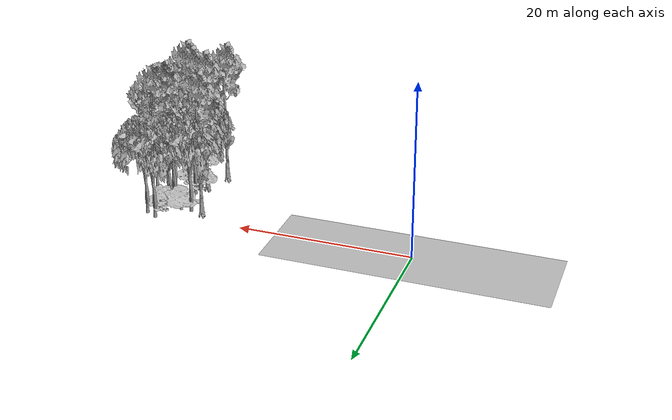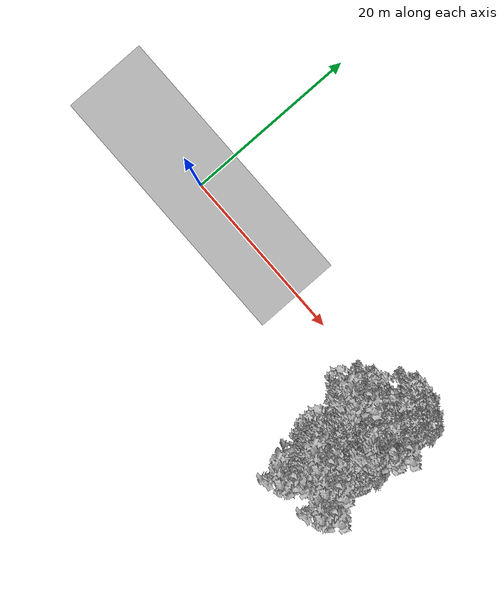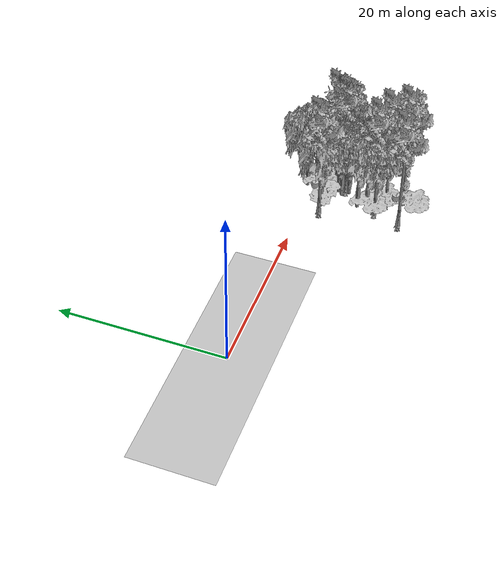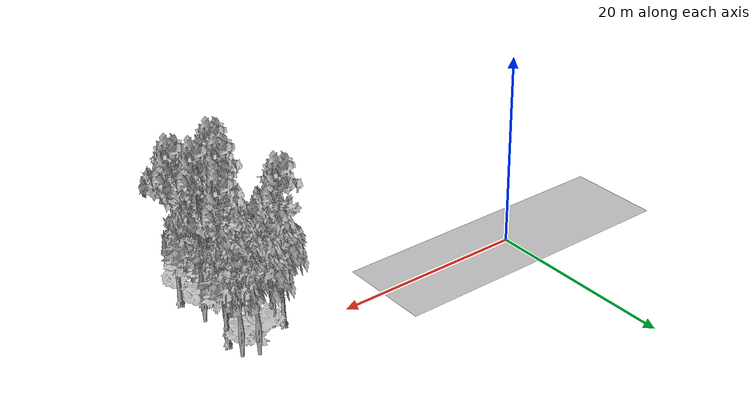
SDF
<sdf version="1.7">
 <world name="default">
  <model name="ground_plane">
   <static>1</static>
   <link name="link">
    <collision name="collision">
     <pose>-50 0 0 0 -0 0</pose>
     <geometry><plane><normal>0 0 1</normal><size>100 100</size></plane></geometry>
     <surface><contact><ode><min_depth>0.01</min_depth><max_vel>0</max_vel></ode></contact></surface>
    </collision>
    <visual name="grass">
     <cast_shadows>0</cast_shadows>
     <geometry>
      <mesh>
       <scale>0.5814285714285714 0.18142857142857144 0.1</scale>
       <uri>file://grass_plane/meshes/grass_plane.dae</uri>
      </mesh>
     </geometry>
    </visual>
   </link>
  </model>
  <model name="Tree 71">
   <static>1</static>
   <pose>29.939043311026538 -1.2379246793269818 0 1.57079 -0 0</pose>
   <link name="link">
    <collision name="collision">
     <geometry><mesh><scale>4 2.5 4</scale><uri>model://tree_1/meshes/tree_1.obj</uri></mesh></geometry>
    </collision>
    <visual name="visual">
     <geometry><mesh><scale>4 2.5 4</scale><uri>model://tree_1/meshes/tree_1.obj</uri></mesh></geometry>
    </visual>
   </link>
  </model>
  <model name="Tree 77">
   <static>1</static>
   <pose>28.700878751398093 -8.224944167050186 0 1.57079 -0 0</pose>
   <link name="link">
    <collision name="collision">
     <geometry><mesh><scale>3.5 5 3.5</scale><uri>model://tree_2/meshes/tree_2.obj</uri></mesh></geometry>
    </collision>
    <visual name="visual">
     <geometry><mesh><scale>3.5 5 3.5</scale><uri>model://tree_2/meshes/tree_2.obj</uri></mesh></geometry>
    </visual>
   </link>
  </model>
  <model name="Tree 133">
   <static>1</static>
   <pose>29.845886548754166 -9.194254597273273 0 1.57079 -0 0</pose>
   <link name="link">
    <collision name="collision">
     <geometry><mesh><scale>3.5 5 3.5</scale><uri>model://tree_9/meshes/tree_9.obj</uri></mesh></geometry>
    </collision>
    <visual name="visual">
     <geometry><mesh><scale>3.5 5 3.5</scale><uri>model://tree_9/meshes/tree_9.obj</uri></mesh></geometry>
    </visual>
   </link>
  </model>
  <model name="Tree 137">
   <static>1</static>
   <pose>30.569306665416434 -3.615237241262916 0 1.57079 -0 0</pose>
   <link name="link">
    <collision name="collision">
     <geometry><mesh><scale>3.5 5 3.5</scale><uri>model://tree_9/meshes/tree_9.obj</uri></mesh></geometry>
    </collision>
    <visual name="visual">
     <geometry><mesh><scale>3.5 5 3.5</scale><uri>model://tree_9/meshes/tree_9.obj</uri></mesh></geometry>
    </visual>
   </link>
  </model>
  <model name="Tree 175">
   <static>1</static>
   <pose>28.199312727580235 -6.062269736530633 0 1.57079 -0 0</pose>
   <link name="link">
    <collision name="collision">
     <geometry><mesh><scale>3.5 5 3.5</scale><uri>model://tree_2/meshes/tree_2.obj</uri></mesh></geometry>
    </collision>
    <visual name="visual">
     <geometry><mesh><scale>3.5 5 3.5</scale><uri>model://tree_2/meshes/tree_2.obj</uri></mesh></geometry>
    </visual>
   </link>
  </model>
  <model name="Tree 213">
   <static>1</static>
   <pose>31.31857762931945 -2.4606115797913795 0 1.57079 -0 0</pose>
   <link name="link">
    <collision name="collision">
     <geometry><mesh><scale>3.5 5 3.5</scale><uri>model://tree_9/meshes/tree_9.obj</uri></mesh></geometry>
    </collision>
    <visual name="visual">
     <geometry><mesh><scale>3.5 5 3.5</scale><uri>model://tree_9/meshes/tree_9.obj</uri></mesh></geometry>
    </visual>
   </link>
  </model>
  <model name="Tree 224">
   <static>1</static>
   <pose>31.099440274319377 -6.606701045077925 0 1.57079 -0 0</pose>
   <link name="link">
    <collision name="collision">
     <geometry><mesh><scale>3.5 5 3.5</scale><uri>model://tree_2/meshes/tree_2.obj</uri></mesh></geometry>
    </collision>
    <visual name="visual">
     <geometry><mesh><scale>3.5 5 3.5</scale><uri>model://tree_2/meshes/tree_2.obj</uri></mesh></geometry>
    </visual>
   </link>
  </model>
  <model name="Tree 255">
   <static>1</static>
   <pose>30.53121874693464 -3.8975080141703717 0 1.57079 -0 0</pose>
   <link name="link">
    <collision name="collision">
     <geometry><mesh><scale>3.5 5 3.5</scale><uri>model://tree_9/meshes/tree_9.obj</uri></mesh></geometry>
    </collision>
    <visual name="visual">
     <geometry><mesh><scale>3.5 5 3.5</scale><uri>model://tree_9/meshes/tree_9.obj</uri></mesh></geometry>
    </visual>
   </link>
  </model>
  <model name="Tree 261">
   <static>1</static>
   <pose>26.740040383749218 -1.8676163280130424 0 1.57079 -0 0</pose>
   <link name="link">
    <collision name="collision">
     <geometry><mesh><scale>3.5 5 3.5</scale><uri>model://tree_2/meshes/tree_2.obj</uri></mesh></geometry>
    </collision>
    <visual name="visual">
     <geometry><mesh><scale>3.5 5 3.5</scale><uri>model://tree_2/meshes/tree_2.obj</uri></mesh></geometry>
    </visual>
   </link>
  </model>
  <model name="Tree 302">
   <static>1</static>
   <pose>29.974271773968255 0.8202007497809056 0 1.57079 -0 0</pose>
   <link name="link">
    <collision name="collision">
     <geometry><mesh><scale>3.5 5 3.5</scale><uri>model://tree_2/meshes/tree_2.obj</uri></mesh></geometry>
    </collision>
    <visual name="visual">
     <geometry><mesh><scale>3.5 5 3.5</scale><uri>model://tree_2/meshes/tree_2.obj</uri></mesh></geometry>
    </visual>
   </link>
  </model>
  <model name="Tree 310">
   <static>1</static>
   <pose>29.826538153047423 -8.60617542661119 0 1.57079 -0 0</pose>
   <link name="link">
    <collision name="collision">
     <geometry><mesh><scale>4 2.5 4</scale><uri>model://tree_1/meshes/tree_1.obj</uri></mesh></geometry>
    </collision>
    <visual name="visual">
     <geometry><mesh><scale>4 2.5 4</scale><uri>model://tree_1/meshes/tree_1.obj</uri></mesh></geometry>
    </visual>
   </link>
  </model>
  <model name="Tree 323">
   <static>1</static>
   <pose>31.31312142952916 0.0999133917924464 0 1.57079 -0 0</pose>
   <link name="link">
    <collision name="collision">
     <geometry><mesh><scale>3.5 5 3.5</scale><uri>model://tree_2/meshes/tree_2.obj</uri></mesh></geometry>
    </collision>
    <visual name="visual">
     <geometry><mesh><scale>3.5 5 3.5</scale><uri>model://tree_2/meshes/tree_2.obj</uri></mesh></geometry>
    </visual>
   </link>
  </model>
  <model name="Tree 334">
   <static>1</static>
   <pose>28.21231699270382 -2.009828105523452 0 1.57079 -0 0</pose>
   <link name="link">
    <collision name="collision">
     <geometry><mesh><scale>3 2 3</scale><uri>model://tree_3/meshes/tree_3.obj</uri></mesh></geometry>
    </collision>
    <visual name="visual">
     <geometry><mesh><scale>3 2 3</scale><uri>model://tree_3/meshes/tree_3.obj</uri></mesh></geometry>
    </visual>
   </link>
  </model>
  <model name="Tree 355">
   <static>1</static>
   <pose>25.609942294058413 -2.033720353215257 0 1.57079 -0 0</pose>
   <link name="link">
    <collision name="collision">
     <geometry><mesh><scale>3.5 5 3.5</scale><uri>model://tree_9/meshes/tree_9.obj</uri></mesh></geometry>
    </collision>
    <visual name="visual">
     <geometry><mesh><scale>3.5 5 3.5</scale><uri>model://tree_9/meshes/tree_9.obj</uri></mesh></geometry>
    </visual>
   </link>
  </model>
  <model name="Tree 375">
   <static>1</static>
   <pose>29.678314139586234 -3.6252772695760633 0 1.57079 -0 0</pose>
   <link name="link">
    <collision name="collision">
     <geometry><mesh><scale>3.5 5 3.5</scale><uri>model://tree_2/meshes/tree_2.obj</uri></mesh></geometry>
    </collision>
    <visual name="visual">
     <geometry><mesh><scale>3.5 5 3.5</scale><uri>model://tree_2/meshes/tree_2.obj</uri></mesh></geometry>
    </visual>
   </link>
  </model>
  <model name="Tree 386">
   <static>1</static>
   <pose>29.981588241072956 -12.316803778353288 0 1.57079 -0 0</pose>
   <link name="link">
    <collision name="collision">
     <geometry><mesh><scale>4 2.5 4</scale><uri>model://tree_1/meshes/tree_1.obj</uri></mesh></geometry>
    </collision>
    <visual name="visual">
     <geometry><mesh><scale>4 2.5 4</scale><uri>model://tree_1/meshes/tree_1.obj</uri></mesh></geometry>
    </visual>
   </link>
  </model>
  <model name="Tree 406">
   <static>1</static>
   <pose>26.64730503322535 -11.579839869152341 0 1.57079 -0 0</pose>
   <link name="link">
    <collision name="collision">
     <geometry><mesh><scale>3.5 5 3.5</scale><uri>model://tree_9/meshes/tree_9.obj</uri></mesh></geometry>
    </collision>
    <visual name="visual">
     <geometry><mesh><scale>3.5 5 3.5</scale><uri>model://tree_9/meshes/tree_9.obj</uri></mesh></geometry>
    </visual>
   </link>
  </model>
  <model name="Tree 417">
   <static>1</static>
   <pose>28.11347539165081 -7.652668793679117 0 1.57079 -0 0</pose>
   <link name="link">
    <collision name="collision">
     <geometry><mesh><scale>4 2.5 4</scale><uri>model://tree_1/meshes/tree_1.obj</uri></mesh></geometry>
    </collision>
    <visual name="visual">
     <geometry><mesh><scale>4 2.5 4</scale><uri>model://tree_1/meshes/tree_1.obj</uri></mesh></geometry>
    </visual>
   </link>
  </model>
  <model name="Tree 441">
   <static>1</static>
   <pose>27.81447646521923 -8.319721543521398 0 1.57079 -0 0</pose>
   <link name="link">
    <collision name="collision">
     <geometry><mesh><scale>3.5 5 3.5</scale><uri>model://tree_9/meshes/tree_9.obj</uri></mesh></geometry>
    </collision>
    <visual name="visual">
     <geometry><mesh><scale>3.5 5 3.5</scale><uri>model://tree_9/meshes/tree_9.obj</uri></mesh></geometry>
    </visual>
   </link>
  </model>
  <model name="Tree 487">
   <static>1</static>
   <pose>30.072263222346606 -3.1501477004344185 0 1.57079 -0 0</pose>
   <link name="link">
    <collision name="collision">
     <geometry><mesh><scale>3.5 5 3.5</scale><uri>model://tree_2/meshes/tree_2.obj</uri></mesh></geometry>
    </collision>
    <visual name="visual">
     <geometry><mesh><scale>3.5 5 3.5</scale><uri>model://tree_2/meshes/tree_2.obj</uri></mesh></geometry>
    </visual>
   </link>
  </model>
  <model name="Tree 497">
   <static>1</static>
   <pose>30.183430731869677 -4.4324883854423796 0 1.57079 -0 0</pose>
   <link name="link">
    <collision name="collision">
     <geometry><mesh><scale>3.5 5 3.5</scale><uri>model://tree_2/meshes/tree_2.obj</uri></mesh></geometry>
    </collision>
    <visual name="visual">
     <geometry><mesh><scale>3.5 5 3.5</scale><uri>model://tree_2/meshes/tree_2.obj</uri></mesh></geometry>
    </visual>
   </link>
  </model>
  <model name="Tree 524">
   <static>1</static>
   <pose>28.239639428664375 -7.191563224096059 0 1.57079 -0 0</pose>
   <link name="link">
    <collision name="collision">
     <geometry><mesh><scale>3.5 5 3.5</scale><uri>model://tree_2/meshes/tree_2.obj</uri></mesh></geometry>
    </collision>
    <visual name="visual">
     <geometry><mesh><scale>3.5 5 3.5</scale><uri>model://tree_2/meshes/tree_2.obj</uri></mesh></geometry>
    </visual>
   </link>
  </model>
  <model name="Tree 525">
   <static>1</static>
   <pose>31.304507624015855 -10.940151881601192 0 1.57079 -0 0</pose>
   <link name="link">
    <collision name="collision">
     <geometry><mesh><scale>3.5 5 3.5</scale><uri>model://tree_9/meshes/tree_9.obj</uri></mesh></geometry>
    </collision>
    <visual name="visual">
     <geometry><mesh><scale>3.5 5 3.5</scale><uri>model://tree_9/meshes/tree_9.obj</uri></mesh></geometry>
    </visual>
   </link>
  </model>
 </world>
</sdf>
